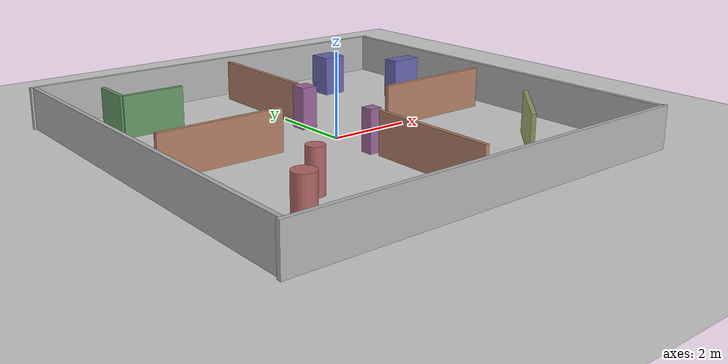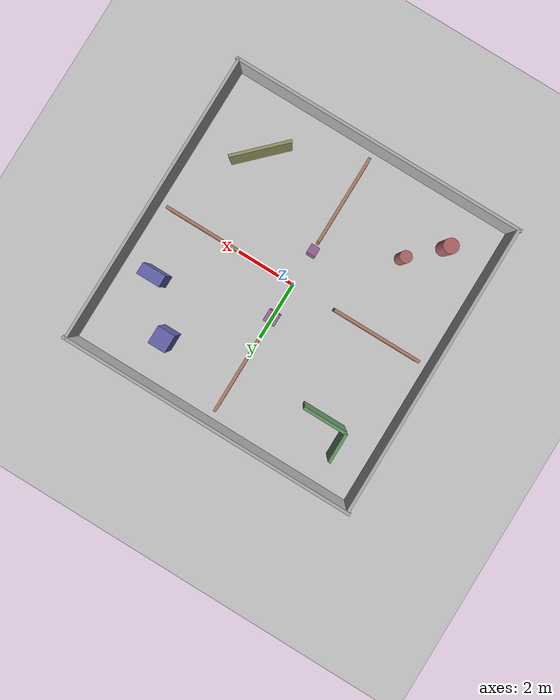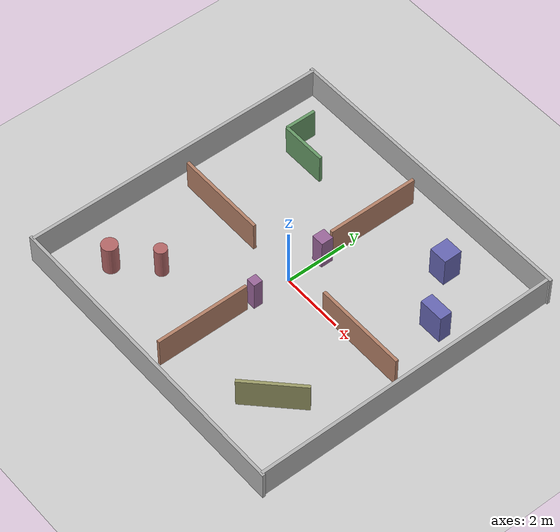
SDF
<sdf version="1.8">
 <world name="world_demo">
  <physics name="1ms" type="ignored">
   <max_step_size>0.01</max_step_size>
   <real_time_factor>1.0</real_time_factor>
  </physics>
  <plugin filename="libignition-gazebo-physics-system.so" name="ignition::gazebo::systems::Physics"/>
  <plugin filename="ignition-gazebo-sensors-system" name="ignition::gazebo::systems::Sensors">
   <render_engine>ogre2</render_engine>
  </plugin>
  <plugin filename="libignition-gazebo-scene-broadcaster-system.so" name="ignition::gazebo::systems::SceneBroadcaster"/>
  <plugin filename="libignition-gazebo-user-commands-system.so" name="ignition::gazebo::systems::UserCommands"/>
  <plugin filename="libignition-gazebo-contact-system.so" name="ignition::gazebo::systems::Contact"/>
  <plugin filename="ignition-gazebo-imu-system" name="ignition::gazebo::systems::Imu"/>
  <scene>
   <ambient>1 1 1 1</ambient>
   <background>0.3 0.7 0.9 1</background>
   <shadows>0</shadows>
   <grid>1</grid>
  </scene>
  <light type="directional" name="sun">
   <pose>0 0 10 0 0 0</pose>
   <diffuse>0.8 0.8 0.8 1</diffuse>
   <specular>0.2 0.2 0.2 1</specular>
   <attenuation>
    <range>1000</range>
    <constant>0.9</constant>
    <linear>0.01</linear>
    <quadratic>0.001</quadratic>
   </attenuation>
   <direction>-0.5 0.1 -0.9</direction>
  </light>
  <model name="ground_plane">
   <static>true</static>
   <link name="link">
    <collision name="collision">
     <geometry><plane><normal>0 0 1</normal><size>100 100</size></plane></geometry>
    </collision>
    <visual name="visual">
     <geometry><plane><normal>0 0 1</normal><size>100 100</size></plane></geometry>
     <material><ambient>0.8 0.8 0.8 1</ambient><diffuse>0.8 0.8 0.8 1</diffuse></material>
    </visual>
   </link>
  </model>
  <model name="wall_north">
   <static>true</static>
   <pose>0 5 0.5 0 0 0</pose>
   <link name="link">
    <collision name="c"><geometry><box><size>10.2 0.1 1.0</size></box></geometry></collision>
    <visual name="v">
     <geometry><box><size>10.2 0.1 1.0</size></box></geometry>
     <material><ambient>0.5 0.5 0.5 1</ambient><diffuse>0.7 0.7 0.7 1</diffuse></material>
    </visual>
   </link>
  </model>
  <model name="wall_south">
   <static>true</static>
   <pose>0 -5 0.5 0 0 0</pose>
   <link name="link">
    <collision name="c"><geometry><box><size>10.2 0.1 1.0</size></box></geometry></collision>
    <visual name="v">
     <geometry><box><size>10.2 0.1 1.0</size></box></geometry>
     <material><ambient>0.5 0.5 0.5 1</ambient><diffuse>0.7 0.7 0.7 1</diffuse></material>
    </visual>
   </link>
  </model>
  <model name="wall_east">
   <static>true</static>
   <pose>5 0 0.5 0 0 0</pose>
   <link name="link">
    <collision name="c"><geometry><box><size>0.1 10.0 1.0</size></box></geometry></collision>
    <visual name="v">
     <geometry><box><size>0.1 10.0 1.0</size></box></geometry>
     <material><ambient>0.5 0.5 0.5 1</ambient><diffuse>0.7 0.7 0.7 1</diffuse></material>
    </visual>
   </link>
  </model>
  <model name="wall_west">
   <static>true</static>
   <pose>-5 0 0.5 0 0 0</pose>
   <link name="link">
    <collision name="c"><geometry><box><size>0.1 10.0 1.0</size></box></geometry></collision>
    <visual name="v">
     <geometry><box><size>0.1 10.0 1.0</size></box></geometry>
     <material><ambient>0.5 0.5 0.5 1</ambient><diffuse>0.7 0.7 0.7 1</diffuse></material>
    </visual>
   </link>
  </model>
  <model name="wall_h_left">
   <static>true</static>
   <pose>-3.0 0 0.5 0 0 0</pose>
   <link name="link">
    <collision name="c"><geometry><box><size>3.0 0.1 1.0</size></box></geometry></collision>
    <visual name="v">
     <geometry><box><size>3.0 0.1 1.0</size></box></geometry>
     <material><ambient>0.6 0.4 0.3 1</ambient><diffuse>0.7 0.5 0.4 1</diffuse></material>
    </visual>
   </link>
  </model>
  <model name="wall_h_right">
   <static>true</static>
   <pose>3.0 0 0.5 0 0 0</pose>
   <link name="link">
    <collision name="c"><geometry><box><size>3.0 0.1 1.0</size></box></geometry></collision>
    <visual name="v">
     <geometry><box><size>3.0 0.1 1.0</size></box></geometry>
     <material><ambient>0.6 0.4 0.3 1</ambient><diffuse>0.7 0.5 0.4 1</diffuse></material>
    </visual>
   </link>
  </model>
  <model name="wall_v_top">
   <static>true</static>
   <pose>0 3.0 0.5 0 0 0</pose>
   <link name="link">
    <collision name="c"><geometry><box><size>0.1 3.0 1.0</size></box></geometry></collision>
    <visual name="v">
     <geometry><box><size>0.1 3.0 1.0</size></box></geometry>
     <material><ambient>0.6 0.4 0.3 1</ambient><diffuse>0.7 0.5 0.4 1</diffuse></material>
    </visual>
   </link>
  </model>
  <model name="wall_v_bottom">
   <static>true</static>
   <pose>0 -3.0 0.5 0 0 0</pose>
   <link name="link">
    <collision name="c"><geometry><box><size>0.1 3.0 1.0</size></box></geometry></collision>
    <visual name="v">
     <geometry><box><size>0.1 3.0 1.0</size></box></geometry>
     <material><ambient>0.6 0.4 0.3 1</ambient><diffuse>0.7 0.5 0.4 1</diffuse></material>
    </visual>
   </link>
  </model>
  <model name="obstacle_nw_1">
   <static>true</static>
   <pose>-3.0 3.0 0.5 0 0 0</pose>
   <link name="link">
    <collision name="c"><geometry><box><size>1.5 0.1 1.0</size></box></geometry></collision>
    <visual name="v">
     <geometry><box><size>1.5 0.1 1.0</size></box></geometry>
     <material><ambient>0.3 0.5 0.3 1</ambient><diffuse>0.4 0.6 0.4 1</diffuse></material>
    </visual>
   </link>
  </model>
  <model name="obstacle_nw_2">
   <static>true</static>
   <pose>-3.75 3.5 0.5 0 0 0</pose>
   <link name="link">
    <collision name="c"><geometry><box><size>0.1 1.0 1.0</size></box></geometry></collision>
    <visual name="v">
     <geometry><box><size>0.1 1.0 1.0</size></box></geometry>
     <material><ambient>0.3 0.5 0.3 1</ambient><diffuse>0.4 0.6 0.4 1</diffuse></material>
    </visual>
   </link>
  </model>
  <model name="obstacle_ne_1">
   <static>true</static>
   <pose>2.5 3.5 0.5 0 0 0</pose>
   <link name="link">
    <collision name="c"><geometry><box><size>0.6 0.6 1.0</size></box></geometry></collision>
    <visual name="v">
     <geometry><box><size>0.6 0.6 1.0</size></box></geometry>
     <material><ambient>0.3 0.3 0.6 1</ambient><diffuse>0.4 0.4 0.7 1</diffuse></material>
    </visual>
   </link>
  </model>
  <model name="obstacle_ne_2">
   <static>true</static>
   <pose>3.8 2.0 0.5 0 0 0</pose>
   <link name="link">
    <collision name="c"><geometry><box><size>0.8 0.4 1.0</size></box></geometry></collision>
    <visual name="v">
     <geometry><box><size>0.8 0.4 1.0</size></box></geometry>
     <material><ambient>0.3 0.3 0.6 1</ambient><diffuse>0.4 0.4 0.7 1</diffuse></material>
    </visual>
   </link>
  </model>
  <model name="pillar_sw_1">
   <static>true</static>
   <pose>-2.5 -2.5 0.5 0 0 0</pose>
   <link name="link">
    <collision name="c">
     <geometry><cylinder><radius>0.2</radius><length>1.0</length></cylinder></geometry>
    </collision>
    <visual name="v">
     <geometry><cylinder><radius>0.2</radius><length>1.0</length></cylinder></geometry>
     <material><ambient>0.6 0.3 0.3 1</ambient><diffuse>0.7 0.4 0.4 1</diffuse></material>
    </visual>
   </link>
  </model>
  <model name="pillar_sw_2">
   <static>true</static>
   <pose>-3.5 -3.5 0.5 0 0 0</pose>
   <link name="link">
    <collision name="c">
     <geometry><cylinder><radius>0.25</radius><length>1.0</length></cylinder></geometry>
    </collision>
    <visual name="v">
     <geometry><cylinder><radius>0.25</radius><length>1.0</length></cylinder></geometry>
     <material><ambient>0.6 0.3 0.3 1</ambient><diffuse>0.7 0.4 0.4 1</diffuse></material>
    </visual>
   </link>
  </model>
  <model name="obstacle_se_1">
   <static>true</static>
   <pose>3.0 -3.0 0.5 0 0 0.7854</pose>
   <link name="link">
    <collision name="c"><geometry><box><size>2.0 0.1 1.0</size></box></geometry></collision>
    <visual name="v">
     <geometry><box><size>2.0 0.1 1.0</size></box></geometry>
     <material><ambient>0.5 0.5 0.3 1</ambient><diffuse>0.6 0.6 0.4 1</diffuse></material>
    </visual>
   </link>
  </model>
  <model name="corridor_obstacle_1">
   <static>true</static>
   <pose>0 1.2 0.5 0 0 0</pose>
   <link name="link">
    <collision name="c"><geometry><box><size>0.4 0.4 1.0</size></box></geometry></collision>
    <visual name="v">
     <geometry><box><size>0.4 0.4 1.0</size></box></geometry>
     <material><ambient>0.5 0.3 0.5 1</ambient><diffuse>0.6 0.4 0.6 1</diffuse></material>
    </visual>
   </link>
  </model>
  <model name="corridor_obstacle_2">
   <static>true</static>
   <pose>0 -1.2 0.5 0 0 0</pose>
   <link name="link">
    <collision name="c"><geometry><box><size>0.3 0.3 1.0</size></box></geometry></collision>
    <visual name="v">
     <geometry><box><size>0.3 0.3 1.0</size></box></geometry>
     <material><ambient>0.5 0.3 0.5 1</ambient><diffuse>0.6 0.4 0.6 1</diffuse></material>
    </visual>
   </link>
  </model>
 </world>
</sdf>
